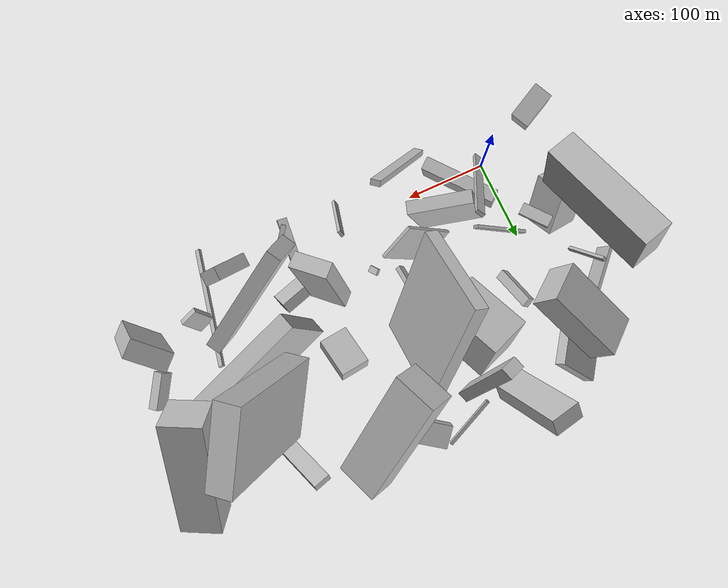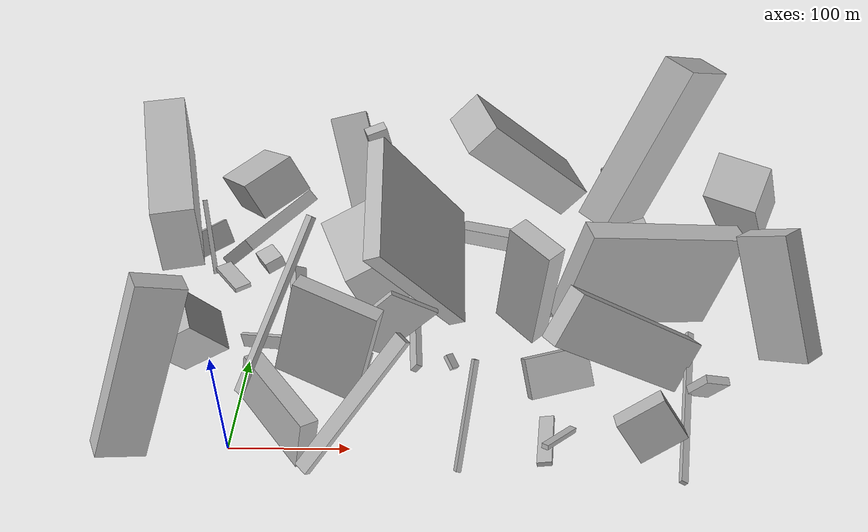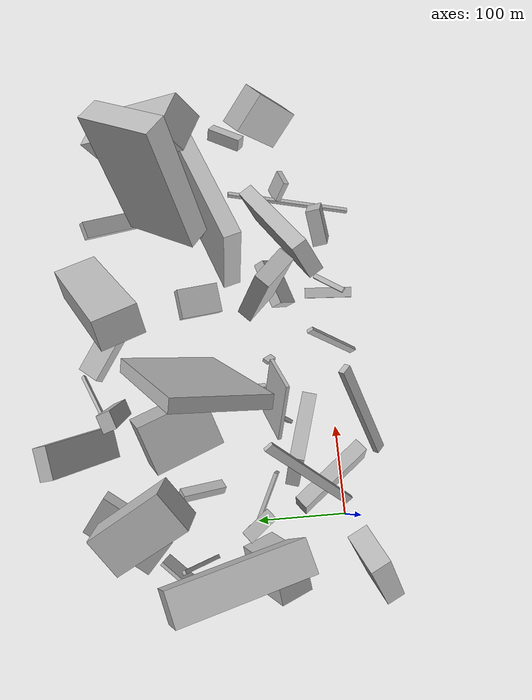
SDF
<sdf version="1.6">
 <world name="default">
  <model name="building_2">
   <static>0</static>
   <pose>6.374799037950473 207.88414858298245 26.40056887834459 -0.21985231834193225 0.14629203476916455 2.1021346725675185</pose>
   <link name="link">
    <gravity>0</gravity>
    <pose>0 0 5.5 0 0 0</pose>
    <collision name="collision"><geometry><box><size>27 18 11</size></box></geometry></collision>
    <visual name="visual">
     <cast_shadows>0</cast_shadows>
     <geometry><box><size>27 18 11</size></box></geometry>
     <material>
      <script>
       <uri>model://HANNAS_wall/materials/scripts</uri>
       <uri>model://HANNAS_wall/materials/textures</uri>
       <name>vrc/HANNAS_wall</name>
      </script>
     </material>
    </visual>
   </link>
  </model>
  <model name="building_3">
   <static>0</static>
   <pose>320.8693547137419 174.9728051699887 110.48953228814197 -0.24050811683475085 -0.4382244887370539 -2.1483735195910407</pose>
   <link name="link">
    <gravity>0</gravity>
    <pose>0 0 74.5 0 0 0</pose>
    <collision name="collision"><geometry><box><size>89 27 149</size></box></geometry></collision>
    <visual name="visual">
     <cast_shadows>0</cast_shadows>
     <geometry><box><size>89 27 149</size></box></geometry>
     <material>
      <script>
       <uri>model://HANNAS_wall/materials/scripts</uri>
       <uri>model://HANNAS_wall/materials/textures</uri>
       <name>vrc/HANNAS_wall</name>
      </script>
     </material>
    </visual>
   </link>
  </model>
  <model name="building_4">
   <static>0</static>
   <pose>35.538136812798115 11.593390169620463 32.14889928994598 1.7652337079706337 -0.034662710076764996 2.227743459547077</pose>
   <link name="link">
    <gravity>0</gravity>
    <pose>0 0 8.0 0 0 0</pose>
    <collision name="collision"><geometry><box><size>93 43 16</size></box></geometry></collision>
    <visual name="visual">
     <cast_shadows>0</cast_shadows>
     <geometry><box><size>93 43 16</size></box></geometry>
     <material>
      <script>
       <uri>model://HANNAS_wall/materials/scripts</uri>
       <uri>model://HANNAS_wall/materials/textures</uri>
       <name>vrc/HANNAS_wall</name>
      </script>
     </material>
    </visual>
   </link>
  </model>
  <model name="building_5">
   <static>0</static>
   <pose>157.451745292774 159.48959449159938 101.26027000572725 2.3390983281667848 -0.9406246980779466 -2.4241519717004087</pose>
   <link name="link">
    <gravity>0</gravity>
    <pose>0 0 8.0 0 0 0</pose>
    <collision name="collision"><geometry><box><size>150 113 16</size></box></geometry></collision>
    <visual name="visual">
     <cast_shadows>0</cast_shadows>
     <geometry><box><size>150 113 16</size></box></geometry>
     <material>
      <script>
       <uri>model://HANNAS_wall/materials/scripts</uri>
       <uri>model://HANNAS_wall/materials/textures</uri>
       <name>vrc/HANNAS_wall</name>
      </script>
     </material>
    </visual>
   </link>
  </model>
  <model name="building_7">
   <static>0</static>
   <pose>80.27334419348836 176.09147610545475 44.074714349727415 0.3344994653990331 1.193948422959993 0.6989760967878159</pose>
   <link name="link">
    <gravity>0</gravity>
    <pose>0 0 28.0 0 0 0</pose>
    <collision name="collision"><geometry><box><size>59 79 56</size></box></geometry></collision>
    <visual name="visual">
     <cast_shadows>0</cast_shadows>
     <geometry><box><size>59 79 56</size></box></geometry>
     <material>
      <script>
       <uri>model://HANNAS_wall/materials/scripts</uri>
       <uri>model://HANNAS_wall/materials/textures</uri>
       <name>vrc/HANNAS_wall</name>
      </script>
     </material>
    </visual>
   </link>
  </model>
  <model name="building_12">
   <static>0</static>
   <pose>193.90823779123713 1.9804694860342664 40.02987338197989 0.9021650770114678 0.30811064189712056 0.13222188307897606</pose>
   <link name="link">
    <gravity>0</gravity>
    <pose>0 0 4.0 0 0 0</pose>
    <collision name="collision"><geometry><box><size>4 89 8</size></box></geometry></collision>
    <visual name="visual">
     <cast_shadows>0</cast_shadows>
     <geometry><box><size>4 89 8</size></box></geometry>
     <material>
      <script>
       <uri>model://HANNAS_wall/materials/scripts</uri>
       <uri>model://HANNAS_wall/materials/textures</uri>
       <name>vrc/HANNAS_wall</name>
      </script>
     </material>
    </visual>
   </link>
  </model>
  <model name="building_13">
   <static>0</static>
   <pose>-42.09627671675241 70.54462284974352 42.85114218252511 0.8700488510685355 -0.9635563483901457 -2.18646455241318</pose>
   <link name="link">
    <gravity>0</gravity>
    <pose>0 0 19.0 0 0 0</pose>
    <collision name="collision"><geometry><box><size>61 45 38</size></box></geometry></collision>
    <visual name="visual">
     <cast_shadows>0</cast_shadows>
     <geometry><box><size>61 45 38</size></box></geometry>
     <material>
      <script>
       <uri>model://HANNAS_wall/materials/scripts</uri>
       <uri>model://HANNAS_wall/materials/textures</uri>
       <name>vrc/HANNAS_wall</name>
      </script>
     </material>
    </visual>
   </link>
  </model>
  <model name="building_14">
   <static>0</static>
   <pose>16.040530355603607 4.613573378737739 59.57052383788825 -0.698341232747249 -0.3428033533494249 -0.9453485965755376</pose>
   <link name="link">
    <gravity>0</gravity>
    <pose>0 0 75.0 0 0 0</pose>
    <collision name="collision"><geometry><box><size>10 4 150</size></box></geometry></collision>
    <visual name="visual">
     <cast_shadows>0</cast_shadows>
     <geometry><box><size>10 4 150</size></box></geometry>
     <material>
      <script>
       <uri>model://HANNAS_wall/materials/scripts</uri>
       <uri>model://HANNAS_wall/materials/textures</uri>
       <name>vrc/HANNAS_wall</name>
      </script>
     </material>
    </visual>
   </link>
  </model>
  <model name="building_15">
   <static>0</static>
   <pose>353.0350984921834 120.95306776224854 78.721991014069 1.473330084201978 -0.24954362889181209 -2.822094203816303</pose>
   <link name="link">
    <gravity>0</gravity>
    <pose>0 0 10.0 0 0 0</pose>
    <collision name="collision"><geometry><box><size>150 98 20</size></box></geometry></collision>
    <visual name="visual">
     <cast_shadows>0</cast_shadows>
     <geometry><box><size>150 98 20</size></box></geometry>
     <material>
      <script>
       <uri>model://HANNAS_wall/materials/scripts</uri>
       <uri>model://HANNAS_wall/materials/textures</uri>
       <name>vrc/HANNAS_wall</name>
      </script>
     </material>
    </visual>
   </link>
  </model>
  <model name="building_16">
   <static>0</static>
   <pose>115.4394136671288 39.7301283060524 65.07839255246063 -0.3490084047711699 -1.3117104433659088 0.04171710702178521</pose>
   <link name="link">
    <gravity>0</gravity>
    <pose>0 0 36.5 0 0 0</pose>
    <collision name="collision"><geometry><box><size>93 15 73</size></box></geometry></collision>
    <visual name="visual">
     <cast_shadows>0</cast_shadows>
     <geometry><box><size>93 15 73</size></box></geometry>
     <material>
      <script>
       <uri>model://HANNAS_wall/materials/scripts</uri>
       <uri>model://HANNAS_wall/materials/textures</uri>
       <name>vrc/HANNAS_wall</name>
      </script>
     </material>
    </visual>
   </link>
  </model>
  <model name="building_20">
   <static>0</static>
   <pose>359.8794816569856 2.3931441153168 42.342129934802585 2.621026799590162 0.9553100860688003 -0.3923126234071937</pose>
   <link name="link">
    <gravity>0</gravity>
    <pose>0 0 21.5 0 0 0</pose>
    <collision name="collision"><geometry><box><size>40 17 43</size></box></geometry></collision>
    <visual name="visual">
     <cast_shadows>0</cast_shadows>
     <geometry><box><size>40 17 43</size></box></geometry>
     <material>
      <script>
       <uri>model://HANNAS_wall/materials/scripts</uri>
       <uri>model://HANNAS_wall/materials/textures</uri>
       <name>vrc/HANNAS_wall</name>
      </script>
     </material>
    </visual>
   </link>
  </model>
  <model name="building_22">
   <static>0</static>
   <pose>244.4304469497514 49.130514012804944 32.83936275753467 1.5451422416995004 -0.9093313462585202 1.891541122366584</pose>
   <link name="link">
    <gravity>0</gravity>
    <pose>0 0 27.5 0 0 0</pose>
    <collision name="collision"><geometry><box><size>34 13 55</size></box></geometry></collision>
    <visual name="visual">
     <cast_shadows>0</cast_shadows>
     <geometry><box><size>34 13 55</size></box></geometry>
     <material>
      <script>
       <uri>model://HANNAS_wall/materials/scripts</uri>
       <uri>model://HANNAS_wall/materials/textures</uri>
       <name>vrc/HANNAS_wall</name>
      </script>
     </material>
    </visual>
   </link>
  </model>
  <model name="building_24">
   <static>0</static>
   <pose>133.22688423254178 249.75385125614036 83.9347308235424 -2.8670257376584503 -1.3555809315961382 -3.0888270366212667</pose>
   <link name="link">
    <gravity>0</gravity>
    <pose>0 0 9.5 0 0 0</pose>
    <collision name="collision"><geometry><box><size>148 14 19</size></box></geometry></collision>
    <visual name="visual">
     <cast_shadows>0</cast_shadows>
     <geometry><box><size>148 14 19</size></box></geometry>
     <material>
      <script>
       <uri>model://HANNAS_wall/materials/scripts</uri>
       <uri>model://HANNAS_wall/materials/textures</uri>
       <name>vrc/HANNAS_wall</name>
      </script>
     </material>
    </visual>
   </link>
  </model>
  <model name="building_27">
   <static>0</static>
   <pose>239.99121429918588 84.32087803228536 64.17073005913569 -0.17253508816358956 0.04632156091680353 -2.3542637391650794</pose>
   <link name="link">
    <gravity>0</gravity>
    <pose>0 0 51.0 0 0 0</pose>
    <collision name="collision"><geometry><box><size>18 42 102</size></box></geometry></collision>
    <visual name="visual">
     <cast_shadows>0</cast_shadows>
     <geometry><box><size>18 42 102</size></box></geometry>
     <material>
      <script>
       <uri>model://HANNAS_wall/materials/scripts</uri>
       <uri>model://HANNAS_wall/materials/textures</uri>
       <name>vrc/HANNAS_wall</name>
      </script>
     </material>
    </visual>
   </link>
  </model>
  <model name="building_29">
   <static>0</static>
   <pose>246.04117628173952 238.4873342532362 30.418946951055585 2.299292305073475 1.1845327486869877 -1.4983701352569723</pose>
   <link name="link">
    <gravity>0</gravity>
    <pose>0 0 40.0 0 0 0</pose>
    <collision name="collision"><geometry><box><size>14 28 80</size></box></geometry></collision>
    <visual name="visual">
     <cast_shadows>0</cast_shadows>
     <geometry><box><size>14 28 80</size></box></geometry>
     <material>
      <script>
       <uri>model://HANNAS_wall/materials/scripts</uri>
       <uri>model://HANNAS_wall/materials/textures</uri>
       <name>vrc/HANNAS_wall</name>
      </script>
     </material>
    </visual>
   </link>
  </model>
  <model name="building_33">
   <static>0</static>
   <pose>354.65674771474056 212.82308801742116 56.680046936304706 -0.23620965209146833 -0.5509265057540703 1.9787380971989734</pose>
   <link name="link">
    <gravity>0</gravity>
    <pose>0 0 4.0 0 0 0</pose>
    <collision name="collision"><geometry><box><size>150 19 8</size></box></geometry></collision>
    <visual name="visual">
     <cast_shadows>0</cast_shadows>
     <geometry><box><size>150 19 8</size></box></geometry>
     <material>
      <script>
       <uri>model://HANNAS_wall/materials/scripts</uri>
       <uri>model://HANNAS_wall/materials/textures</uri>
       <name>vrc/HANNAS_wall</name>
      </script>
     </material>
    </visual>
   </link>
  </model>
  <model name="building_34">
   <static>0</static>
   <pose>403.40179739959785 43.78157892635232 30.188810574261467 1.159642875917045 0.432589766868138 -1.484971953831013</pose>
   <link name="link">
    <gravity>0</gravity>
    <pose>0 0 11.5 0 0 0</pose>
    <collision name="collision"><geometry><box><size>7 30 23</size></box></geometry></collision>
    <visual name="visual">
     <cast_shadows>0</cast_shadows>
     <geometry><box><size>7 30 23</size></box></geometry>
     <material>
      <script>
       <uri>model://HANNAS_wall/materials/scripts</uri>
       <uri>model://HANNAS_wall/materials/textures</uri>
       <name>vrc/HANNAS_wall</name>
      </script>
     </material>
    </visual>
   </link>
  </model>
  <model name="building_35">
   <static>0</static>
   <pose>258.1837158179971 126.061272589838 36.89785995788893 1.360710618066226 0.1884391219893011 -3.0130983428493052</pose>
   <link name="link">
    <gravity>0</gravity>
    <pose>0 0 24.0 0 0 0</pose>
    <collision name="collision"><geometry><box><size>34 17 48</size></box></geometry></collision>
    <visual name="visual">
     <cast_shadows>0</cast_shadows>
     <geometry><box><size>34 17 48</size></box></geometry>
     <material>
      <script>
       <uri>model://HANNAS_wall/materials/scripts</uri>
       <uri>model://HANNAS_wall/materials/textures</uri>
       <name>vrc/HANNAS_wall</name>
      </script>
     </material>
    </visual>
   </link>
  </model>
  <model name="building_37">
   <static>0</static>
   <pose>98.68207143523561 258.35929639956026 50.69643815027407 0.2219574871847161 -0.6536897217148411 -1.5402033873819185</pose>
   <link name="link">
    <gravity>0</gravity>
    <pose>0 0 48.5 0 0 0</pose>
    <collision name="collision"><geometry><box><size>20 35 97</size></box></geometry></collision>
    <visual name="visual">
     <cast_shadows>0</cast_shadows>
     <geometry><box><size>20 35 97</size></box></geometry>
     <material>
      <script>
       <uri>model://HANNAS_wall/materials/scripts</uri>
       <uri>model://HANNAS_wall/materials/textures</uri>
       <name>vrc/HANNAS_wall</name>
      </script>
     </material>
    </visual>
   </link>
  </model>
  <model name="building_38">
   <static>0</static>
   <pose>375.0474432941694 220.8048340719793 34.22311454682611 0.4041292794627561 -0.18822494764556716 1.5620078311743968</pose>
   <link name="link">
    <gravity>0</gravity>
    <pose>0 0 8.0 0 0 0</pose>
    <collision name="collision"><geometry><box><size>8 22 16</size></box></geometry></collision>
    <visual name="visual">
     <cast_shadows>0</cast_shadows>
     <geometry><box><size>8 22 16</size></box></geometry>
     <material>
      <script>
       <uri>model://HANNAS_wall/materials/scripts</uri>
       <uri>model://HANNAS_wall/materials/textures</uri>
       <name>vrc/HANNAS_wall</name>
      </script>
     </material>
    </visual>
   </link>
  </model>
  <model name="building_40">
   <static>0</static>
   <pose>23.359745005094503 91.76731047774007 40.49378950665455 2.9706344922017878 -0.31603157673917487 -0.44130576863358884</pose>
   <link name="link">
    <gravity>0</gravity>
    <pose>0 0 6.0 0 0 0</pose>
    <collision name="collision"><geometry><box><size>63 4 12</size></box></geometry></collision>
    <visual name="visual">
     <cast_shadows>0</cast_shadows>
     <geometry><box><size>63 4 12</size></box></geometry>
     <material>
      <script>
       <uri>model://HANNAS_wall/materials/scripts</uri>
       <uri>model://HANNAS_wall/materials/textures</uri>
       <name>vrc/HANNAS_wall</name>
      </script>
     </material>
    </visual>
   </link>
  </model>
  <model name="building_42">
   <static>0</static>
   <pose>333.81930039617714 60.47052338468703 93.32361744415097 2.907145072435096 0.6744840698747837 0.3911171612423133</pose>
   <link name="link">
    <gravity>0</gravity>
    <pose>0 0 23.0 0 0 0</pose>
    <collision name="collision"><geometry><box><size>150 18 46</size></box></geometry></collision>
    <visual name="visual">
     <cast_shadows>0</cast_shadows>
     <geometry><box><size>150 18 46</size></box></geometry>
     <material>
      <script>
       <uri>model://HANNAS_wall/materials/scripts</uri>
       <uri>model://HANNAS_wall/materials/textures</uri>
       <name>vrc/HANNAS_wall</name>
      </script>
     </material>
    </visual>
   </link>
  </model>
  <model name="building_43">
   <static>0</static>
   <pose>342.3398764075861 158.7444489699262 45.56028718210574 0.1778984652011413 -0.5285417412337635 1.0516814120427311</pose>
   <link name="link">
    <gravity>0</gravity>
    <pose>0 0 14.5 0 0 0</pose>
    <collision name="collision"><geometry><box><size>26 22 29</size></box></geometry></collision>
    <visual name="visual">
     <cast_shadows>0</cast_shadows>
     <geometry><box><size>26 22 29</size></box></geometry>
     <material>
      <script>
       <uri>model://HANNAS_wall/materials/scripts</uri>
       <uri>model://HANNAS_wall/materials/textures</uri>
       <name>vrc/HANNAS_wall</name>
      </script>
     </material>
    </visual>
   </link>
  </model>
  <model name="building_45">
   <static>0</static>
   <pose>184.2014028823309 67.5439967675535 26.091465296311622 0.6116879136524315 0.9107317090660072 2.8466517118898857</pose>
   <link name="link">
    <gravity>0</gravity>
    <pose>0 0 6.5 0 0 0</pose>
    <collision name="collision"><geometry><box><size>4 8 13</size></box></geometry></collision>
    <visual name="visual">
     <cast_shadows>0</cast_shadows>
     <geometry><box><size>4 8 13</size></box></geometry>
     <material>
      <script>
       <uri>model://HANNAS_wall/materials/scripts</uri>
       <uri>model://HANNAS_wall/materials/textures</uri>
       <name>vrc/HANNAS_wall</name>
      </script>
     </material>
    </visual>
   </link>
  </model>
  <model name="building_46">
   <static>0</static>
   <pose>-12.21588406969721 208.68811101896736 103.36725248305243 -1.2487136681263027 -0.45359521836729005 -1.0848919050535206</pose>
   <link name="link">
    <gravity>0</gravity>
    <pose>0 0 24.0 0 0 0</pose>
    <collision name="collision"><geometry><box><size>96 34 48</size></box></geometry></collision>
    <visual name="visual">
     <cast_shadows>0</cast_shadows>
     <geometry><box><size>96 34 48</size></box></geometry>
     <material>
      <script>
       <uri>model://HANNAS_wall/materials/scripts</uri>
       <uri>model://HANNAS_wall/materials/textures</uri>
       <name>vrc/HANNAS_wall</name>
      </script>
     </material>
    </visual>
   </link>
  </model>
  <model name="building_48">
   <static>0</static>
   <pose>8.608371011087492 90.07359647457207 95.1223825415558 -1.551195175742364 0.031695576305773444 0.6669535910939882</pose>
   <link name="link">
    <gravity>0</gravity>
    <pose>0 0 17.5 0 0 0</pose>
    <collision name="collision"><geometry><box><size>14 4 35</size></box></geometry></collision>
    <visual name="visual">
     <cast_shadows>0</cast_shadows>
     <geometry><box><size>14 4 35</size></box></geometry>
     <material>
      <script>
       <uri>model://HANNAS_wall/materials/scripts</uri>
       <uri>model://HANNAS_wall/materials/textures</uri>
       <name>vrc/HANNAS_wall</name>
      </script>
     </material>
    </visual>
   </link>
  </model>
  <model name="building_49">
   <static>0</static>
   <pose>251.5324246668057 232.54299072085587 114.98180399808174 1.3242057023025204 -0.7894177641322673 -2.5808815001675325</pose>
   <link name="link">
    <gravity>0</gravity>
    <pose>0 0 24.0 0 0 0</pose>
    <collision name="collision"><geometry><box><size>150 34 48</size></box></geometry></collision>
    <visual name="visual">
     <cast_shadows>0</cast_shadows>
     <geometry><box><size>150 34 48</size></box></geometry>
     <material>
      <script>
       <uri>model://HANNAS_wall/materials/scripts</uri>
       <uri>model://HANNAS_wall/materials/textures</uri>
       <name>vrc/HANNAS_wall</name>
      </script>
     </material>
    </visual>
   </link>
  </model>
  <model name="building_53">
   <static>0</static>
   <pose>281.20395759687653 6.869859135421699 18.781008423015447 1.2478234036061444 -0.16458838997240482 -0.6297413592214434</pose>
   <link name="link">
    <gravity>0</gravity>
    <pose>0 0 20.5 0 0 0</pose>
    <collision name="collision"><geometry><box><size>6 4 41</size></box></geometry></collision>
    <visual name="visual">
     <cast_shadows>0</cast_shadows>
     <geometry><box><size>6 4 41</size></box></geometry>
     <material>
      <script>
       <uri>model://HANNAS_wall/materials/scripts</uri>
       <uri>model://HANNAS_wall/materials/textures</uri>
       <name>vrc/HANNAS_wall</name>
      </script>
     </material>
    </visual>
   </link>
  </model>
  <model name="building_56">
   <static>0</static>
   <pose>111.1925771610341 64.26152029280914 35.257050126042095 0.8028977991808219 -0.0021113446902742156 -0.42370535500219375</pose>
   <link name="link">
    <gravity>0</gravity>
    <pose>0 0 4.0 0 0 0</pose>
    <collision name="collision"><geometry><box><size>4 18 8</size></box></geometry></collision>
    <visual name="visual">
     <cast_shadows>0</cast_shadows>
     <geometry><box><size>4 18 8</size></box></geometry>
     <material>
      <script>
       <uri>model://HANNAS_wall/materials/scripts</uri>
       <uri>model://HANNAS_wall/materials/textures</uri>
       <name>vrc/HANNAS_wall</name>
      </script>
     </material>
    </visual>
   </link>
  </model>
  <model name="building_58">
   <static>0</static>
   <pose>146.43019814634854 78.66294508866483 57.34028374861695 0.8877803307441807 0.2519134208543302 -1.4619096361027328</pose>
   <link name="link">
    <gravity>0</gravity>
    <pose>0 0 24.0 0 0 0</pose>
    <collision name="collision"><geometry><box><size>4 75 48</size></box></geometry></collision>
    <visual name="visual">
     <cast_shadows>0</cast_shadows>
     <geometry><box><size>4 75 48</size></box></geometry>
     <material>
      <script>
       <uri>model://HANNAS_wall/materials/scripts</uri>
       <uri>model://HANNAS_wall/materials/textures</uri>
       <name>vrc/HANNAS_wall</name>
      </script>
     </material>
    </visual>
   </link>
  </model>
  <model name="building_60">
   <static>0</static>
   <pose>3.1503323151171827 241.8796442466028 36.38119725629672 0.1549200816265014 -0.7930117065485348 -0.7562627168305123</pose>
   <link name="link">
    <gravity>0</gravity>
    <pose>0 0 6.0 0 0 0</pose>
    <collision name="collision"><geometry><box><size>66 87 12</size></box></geometry></collision>
    <visual name="visual">
     <cast_shadows>0</cast_shadows>
     <geometry><box><size>66 87 12</size></box></geometry>
     <material>
      <script>
       <uri>model://HANNAS_wall/materials/scripts</uri>
       <uri>model://HANNAS_wall/materials/textures</uri>
       <name>vrc/HANNAS_wall</name>
      </script>
     </material>
    </visual>
   </link>
  </model>
  <model name="building_65">
   <static>0</static>
   <pose>454.40873156790343 38.96274272723697 70.0779406626852 -0.17792162399732167 -0.4979676039797262 -0.7419896332708995</pose>
   <link name="link">
    <gravity>0</gravity>
    <pose>0 0 52.0 0 0 0</pose>
    <collision name="collision"><geometry><box><size>45 21 104</size></box></geometry></collision>
    <visual name="visual">
     <cast_shadows>0</cast_shadows>
     <geometry><box><size>45 21 104</size></box></geometry>
     <material>
      <script>
       <uri>model://HANNAS_wall/materials/scripts</uri>
       <uri>model://HANNAS_wall/materials/textures</uri>
       <name>vrc/HANNAS_wall</name>
      </script>
     </material>
    </visual>
   </link>
  </model>
  <model name="building_66">
   <static>0</static>
   <pose>420.4156795666238 212.21980156522466 110.80141242569601 1.6552615406908686 -0.7982192527424833 1.0428739129972127</pose>
   <link name="link">
    <gravity>0</gravity>
    <pose>0 0 22.5 0 0 0</pose>
    <collision name="collision"><geometry><box><size>39 150 45</size></box></geometry></collision>
    <visual name="visual">
     <cast_shadows>0</cast_shadows>
     <geometry><box><size>39 150 45</size></box></geometry>
     <material>
      <script>
       <uri>model://HANNAS_wall/materials/scripts</uri>
       <uri>model://HANNAS_wall/materials/textures</uri>
       <name>vrc/HANNAS_wall</name>
      </script>
     </material>
    </visual>
   </link>
  </model>
  <model name="building_67">
   <static>0</static>
   <pose>-47.89878232943326 138.386251908168 140.51077935167896 -0.014518429432119359 0.1775770541176731 -1.3194936103318442</pose>
   <link name="link">
    <gravity>0</gravity>
    <pose>0 0 32.0 0 0 0</pose>
    <collision name="collision"><geometry><box><size>133 33 64</size></box></geometry></collision>
    <visual name="visual">
     <cast_shadows>0</cast_shadows>
     <geometry><box><size>133 33 64</size></box></geometry>
     <material>
      <script>
       <uri>model://HANNAS_wall/materials/scripts</uri>
       <uri>model://HANNAS_wall/materials/textures</uri>
       <name>vrc/HANNAS_wall</name>
      </script>
     </material>
    </visual>
   </link>
  </model>
  <model name="building_69">
   <static>0</static>
   <pose>-43.845643839567245 181.43793895624682 58.22364591100697 0.020680807975216816 0.41395943188583384 2.3872637708445694</pose>
   <link name="link">
    <gravity>0</gravity>
    <pose>0 0 11.5 0 0 0</pose>
    <collision name="collision"><geometry><box><size>4 53 23</size></box></geometry></collision>
    <visual name="visual">
     <cast_shadows>0</cast_shadows>
     <geometry><box><size>4 53 23</size></box></geometry>
     <material>
      <script>
       <uri>model://HANNAS_wall/materials/scripts</uri>
       <uri>model://HANNAS_wall/materials/textures</uri>
       <name>vrc/HANNAS_wall</name>
      </script>
     </material>
    </visual>
   </link>
  </model>
  <model name="building_70">
   <static>0</static>
   <pose>-35.4609770356551 -2.5556467784035632 93.16111413020657 -0.2407105892880289 -1.1493909529435977 0.6949062329993498</pose>
   <link name="link">
    <gravity>0</gravity>
    <pose>0 0 19.5 0 0 0</pose>
    <collision name="collision"><geometry><box><size>150 21 39</size></box></geometry></collision>
    <visual name="visual">
     <cast_shadows>0</cast_shadows>
     <geometry><box><size>150 21 39</size></box></geometry>
     <material>
      <script>
       <uri>model://HANNAS_wall/materials/scripts</uri>
       <uri>model://HANNAS_wall/materials/textures</uri>
       <name>vrc/HANNAS_wall</name>
      </script>
     </material>
    </visual>
   </link>
  </model>
  <model name="building_72">
   <static>0</static>
   <pose>457.6805421528848 101.1267172616858 31.94380186504473 -0.23043374724141197 0.5056035499053083 -0.6890302699600328</pose>
   <link name="link">
    <gravity>0</gravity>
    <pose>0 0 7.5 0 0 0</pose>
    <collision name="collision"><geometry><box><size>13 43 15</size></box></geometry></collision>
    <visual name="visual">
     <cast_shadows>0</cast_shadows>
     <geometry><box><size>13 43 15</size></box></geometry>
     <material>
      <script>
       <uri>model://HANNAS_wall/materials/scripts</uri>
       <uri>model://HANNAS_wall/materials/textures</uri>
       <name>vrc/HANNAS_wall</name>
      </script>
     </material>
    </visual>
   </link>
  </model>
  <model name="building_73">
   <static>0</static>
   <pose>150.47674471535782 78.71356983193148 14.820107608450499 1.2665688492808957 0.942759941861574 2.962613719268716</pose>
   <link name="link">
    <gravity>0</gravity>
    <pose>0 0 46.5 0 0 0</pose>
    <collision name="collision"><geometry><box><size>10 6 93</size></box></geometry></collision>
    <visual name="visual">
     <cast_shadows>0</cast_shadows>
     <geometry><box><size>10 6 93</size></box></geometry>
     <material>
      <script>
       <uri>model://HANNAS_wall/materials/scripts</uri>
       <uri>model://HANNAS_wall/materials/textures</uri>
       <name>vrc/HANNAS_wall</name>
      </script>
     </material>
    </visual>
   </link>
  </model>
  <model name="building_75">
   <static>0</static>
   <pose>261.0527602979548 20.712360479900056 16.505027592893857 1.4469086254424552 -0.20782251777357638 -0.06283578526055077</pose>
   <link name="link">
    <gravity>0</gravity>
    <pose>0 0 27.5 0 0 0</pose>
    <collision name="collision"><geometry><box><size>12 4 55</size></box></geometry></collision>
    <visual name="visual">
     <cast_shadows>0</cast_shadows>
     <geometry><box><size>12 4 55</size></box></geometry>
     <material>
      <script>
       <uri>model://HANNAS_wall/materials/scripts</uri>
       <uri>model://HANNAS_wall/materials/textures</uri>
       <name>vrc/HANNAS_wall</name>
      </script>
     </material>
    </visual>
   </link>
  </model>
  <model name="building_78">
   <static>0</static>
   <pose>155.1966853032891 278.24486636091217 20.44184274273754 0.40571797060373616 -0.5121524349954879 -2.6876933613583764</pose>
   <link name="link">
    <gravity>0</gravity>
    <pose>0 0 2.0 0 0 0</pose>
    <collision name="collision"><geometry><box><size>70 4 4</size></box></geometry></collision>
    <visual name="visual">
     <cast_shadows>0</cast_shadows>
     <geometry><box><size>70 4 4</size></box></geometry>
     <material>
      <script>
       <uri>model://HANNAS_wall/materials/scripts</uri>
       <uri>model://HANNAS_wall/materials/textures</uri>
       <name>vrc/HANNAS_wall</name>
      </script>
     </material>
    </visual>
   </link>
  </model>
  <model name="building_81">
   <static>0</static>
   <pose>481.0586143107348 165.36378028736382 19.103889268244316 1.8489544170207044 0.5095944162526146 -2.9197335459966895</pose>
   <link name="link">
    <gravity>0</gravity>
    <pose>0 0 2.5 0 0 0</pose>
    <collision name="collision"><geometry><box><size>4 4 5</size></box></geometry></collision>
    <visual name="visual">
     <cast_shadows>0</cast_shadows>
     <geometry><box><size>4 4 5</size></box></geometry>
     <material>
      <script>
       <uri>model://HANNAS_wall/materials/scripts</uri>
       <uri>model://HANNAS_wall/materials/textures</uri>
       <name>vrc/HANNAS_wall</name>
      </script>
     </material>
    </visual>
   </link>
  </model>
  <model name="building_82">
   <static>0</static>
   <pose>35.282146394861286 162.28266985557002 23.460544407784383 0.5685499217252469 0.5607185800139869 0.4747971912625391</pose>
   <link name="link">
    <gravity>0</gravity>
    <pose>0 0 5.0 0 0 0</pose>
    <collision name="collision"><geometry><box><size>12 53 10</size></box></geometry></collision>
    <visual name="visual">
     <cast_shadows>0</cast_shadows>
     <geometry><box><size>12 53 10</size></box></geometry>
     <material>
      <script>
       <uri>model://HANNAS_wall/materials/scripts</uri>
       <uri>model://HANNAS_wall/materials/textures</uri>
       <name>vrc/HANNAS_wall</name>
      </script>
     </material>
    </visual>
   </link>
  </model>
  <model name="building_83">
   <static>0</static>
   <pose>112.6914871690507 -23.426682058752267 71.62640543071004 1.2443235551006144 -0.6977643925750173 -2.131025742681306</pose>
   <link name="link">
    <gravity>0</gravity>
    <pose>0 0 6.0 0 0 0</pose>
    <collision name="collision"><geometry><box><size>7 132 12</size></box></geometry></collision>
    <visual name="visual">
     <cast_shadows>0</cast_shadows>
     <geometry><box><size>7 132 12</size></box></geometry>
     <material>
      <script>
       <uri>model://HANNAS_wall/materials/scripts</uri>
       <uri>model://HANNAS_wall/materials/textures</uri>
       <name>vrc/HANNAS_wall</name>
      </script>
     </material>
    </visual>
   </link>
  </model>
  <model name="building_86">
   <static>0</static>
   <pose>-30.87812919291533 148.8955638682139 62.04947390340775 -0.5477976537223551 0.03278522413995076 0.302845638915222</pose>
   <link name="link">
    <gravity>0</gravity>
    <pose>0 0 33.0 0 0 0</pose>
    <collision name="collision"><geometry><box><size>4 4 66</size></box></geometry></collision>
    <visual name="visual">
     <cast_shadows>0</cast_shadows>
     <geometry><box><size>4 4 66</size></box></geometry>
     <material>
      <script>
       <uri>model://HANNAS_wall/materials/scripts</uri>
       <uri>model://HANNAS_wall/materials/textures</uri>
       <name>vrc/HANNAS_wall</name>
      </script>
     </material>
    </visual>
   </link>
  </model>
  <model name="building_88">
   <static>0</static>
   <pose>378.4783812159367 30.022141810981957 22.998940403843005 0.28245564378500215 -1.0279576162995891 -0.4076826302643409</pose>
   <link name="link">
    <gravity>0</gravity>
    <pose>0 0 3.0 0 0 0</pose>
    <collision name="collision"><geometry><box><size>4 150 6</size></box></geometry></collision>
    <visual name="visual">
     <cast_shadows>0</cast_shadows>
     <geometry><box><size>4 150 6</size></box></geometry>
     <material>
      <script>
       <uri>model://HANNAS_wall/materials/scripts</uri>
       <uri>model://HANNAS_wall/materials/textures</uri>
       <name>vrc/HANNAS_wall</name>
      </script>
     </material>
    </visual>
   </link>
  </model>
  <model name="building_90">
   <static>0</static>
   <pose>482.133343508548 186.6861954999175 27.6092931636109 2.789044239450461 -0.004336406189597427 2.486906346127388</pose>
   <link name="link">
    <gravity>0</gravity>
    <pose>0 0 5.5 0 0 0</pose>
    <collision name="collision"><geometry><box><size>4 16 11</size></box></geometry></collision>
    <visual name="visual">
     <cast_shadows>0</cast_shadows>
     <geometry><box><size>4 16 11</size></box></geometry>
     <material>
      <script>
       <uri>model://HANNAS_wall/materials/scripts</uri>
       <uri>model://HANNAS_wall/materials/textures</uri>
       <name>vrc/HANNAS_wall</name>
      </script>
     </material>
    </visual>
   </link>
  </model>
 </world>
</sdf>
